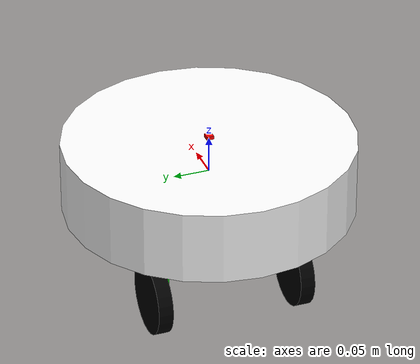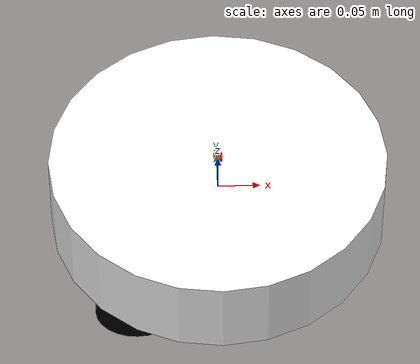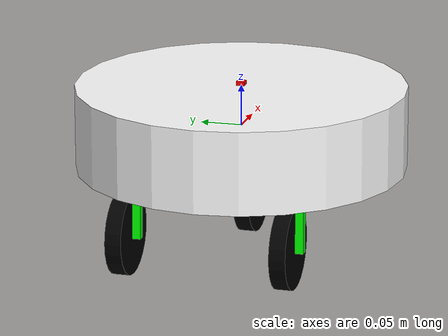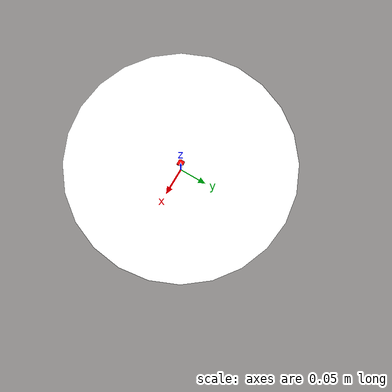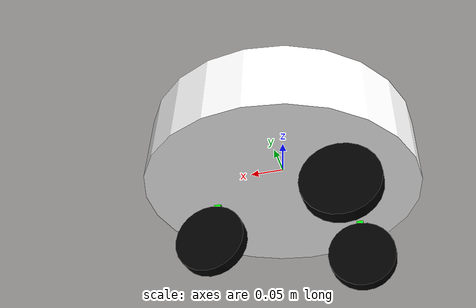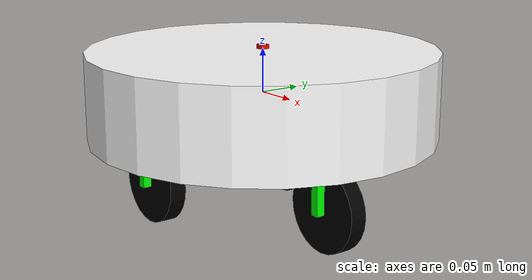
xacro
<?xml version="1.0"?>
<robot xmlns:xacro="http://www.ros.org/wiki/xacro" name="robone">

  <!-- Global constants -->
  <xacro:property name="pi" value="3.1415926535897931"/>

  <!-- Included files -->
  <xacro:include filename="$(find robone_description)/urdf/materials.xacro"/>
  <xacro:include filename="$(find robone_description)/urdf/common.xacro"/>
  <xacro:include filename="$(find robone_description)/urdf/wheel.xacro"/>

  <!-- Robot properties -->
  <xacro:property name="base_radius" value="0.2"/>
  <xacro:property name="base_height" value="0.1"/>

  <xacro:property name="sensor_length" value="0.01"/>

  <xacro:property name="wheel_width" value="0.02"/>
  <xacro:property name="wheel_radius" value="0.05"/>

  <link name="base_link">
    <visual>
      <xacro:cylinder_geometry radius="${base_radius}" height="${base_height}"/>
      <xacro:white_material/>
    </visual>
    <xacro:cylinder_collision radius="${base_radius+0.02}" height="${base_height*2}"/>
    <xacro:cylinder_inertia mass="5" radius="${base_radius}" height="${base_height}"/>
  </link>

  <joint name="hokuyo_joint" type="fixed">
    <axis xyz="0 1 0" />
    <origin xyz="0 0 ${base_height/2}" rpy="0 0 0"/>
    <parent link="base_link"/>
    <child link="hokuyo_link"/>
  </joint>

  <!-- Hokuyo Laser -->
  <link name="hokuyo_link">
    <origin xyz="0 0 ${sensor_length/2}" rpy="0 0 0"/>
    <visual>
      <xacro:box_geometry width="${sensor_length}" height="${sensor_length}" depth="${sensor_length}"/>
      <xacro:red_material/>
    </visual>
    <xacro:box_collision width="${sensor_length}" height="${sensor_length}" depth="${sensor_length}"/>
    <xacro:box_inertia mass="1e-5" width="${sensor_length}" height="${sensor_length}" depth="${sensor_length}"/>
  </link>

  <xacro:motor_wheel suffix="right" width="${wheel_width}" radius="${wheel_radius}"
       x_shift="${-base_radius/2}" y_shift="${-base_radius/2}" z_shift="${-base_height/2}"/>

  <xacro:motor_wheel suffix="left" width="${wheel_width}" radius="${wheel_radius}"
       x_shift="${-base_radius/2}" y_shift="${base_radius/2}" z_shift="${-base_height/2}"/>

  <xacro:simple_wheel suffix="forward" width="${wheel_width}" radius="${wheel_radius}"
       x_shift="${base_radius/2}" z_shift="${-base_height/2}"/>

</robot>

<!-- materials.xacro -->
<robot xmlns:xacro="http://www.ros.org/wiki/xacro">

   <xacro:macro name="white_material">
      <material name="white">
        <color rgba="255 255 255 1"/>
      </material>
   </xacro:macro>

   <xacro:macro name="black_material">
      <material name="black">
        <color rgba="0 0 0 1"/>
      </material>
   </xacro:macro>

   <xacro:macro name="red_material">
      <material name="red">
        <color rgba="255 0 0 1"/>
      </material>
   </xacro:macro>

   <xacro:macro name="green_material">
      <material name="green">
        <color rgba="0 255 0 1"/>
      </material>
   </xacro:macro>

</robot>

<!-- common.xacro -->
<robot xmlns:xacro="http://www.ros.org/wiki/xacro">

  <xacro:macro name="cylinder_inertia" params="mass radius height">

      <inertial>
         <mass value="${mass}" />
         <origin xyz="0 0 0" />

         <inertia  ixx="${(3*radius*radius + height*height)*mass/12}" ixy="0.0" ixz="0.0"
                   iyy="${(3*radius*radius + height*height)*mass/12}" iyz="0.0"
                   izz="${radius*radius*mass/2}" />
      </inertial>

  </xacro:macro>

  <xacro:macro name="cylinder_geometry" params="radius height">
    <geometry>
      <cylinder length="${height}" radius="${radius}"/>
    </geometry>
  </xacro:macro>

  <xacro:macro name="cylinder_collision" params="radius height">
    <collision>
      <xacro:cylinder_geometry radius="${radius}" height="${height}"/>
    </collision>
  </xacro:macro>

  <xacro:macro name="box_inertia" params="mass width height depth">

      <inertial>
         <mass value="${mass}" />
         <origin xyz="0 0 0" />

         <inertia  ixx="${(depth*depth + height*height)*mass/12}" ixy="0.0" ixz="0.0"
                   iyy="${(depth*depth + width*width)*mass/12}" iyz="0.0"
                   izz="${(width*width + height*height)*mass/12}" />
      </inertial>

  </xacro:macro>

  <xacro:macro name="box_geometry" params="width height depth">
    <geometry>
      <box size="${width} ${height} ${depth}"/>
    </geometry>
  </xacro:macro>

  <xacro:macro name="box_collision" params="width height depth">
    <collision>
      <xacro:box_geometry width="${width}" height="${height}" depth="${depth}"/>
    </collision>
  </xacro:macro>

</robot>

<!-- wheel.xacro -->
<robot xmlns:xacro="http://www.ros.org/wiki/xacro">

  <!-- Wheel helper properties -->
  <xacro:property name="wheel_holder_width" value="0.01"/>

  <xacro:macro name="wheel" params="suffix width radius x_shift y_shift z_shift">

    <link name="${suffix}_wheel_holder">
      <visual>
        <xacro:box_geometry width="${wheel_holder_width}" height="${wheel_holder_width}" depth="${radius + wheel_holder_width*2}"/>
        <xacro:green_material/>
      </visual>
      <xacro:box_collision width="${wheel_holder_width}" height="${wheel_holder_width}" depth="${radius + wheel_holder_width*2}"/>
      <xacro:box_inertia mass="0.03" width="${wheel_holder_width}" height="${wheel_holder_width}"
                         depth="${radius + wheel_holder_width*2}"/>
    </link>

    <joint name="base_to_${suffix}_wheel_holder" type="fixed">
      <parent link="base_link"/>
      <child link="${suffix}_wheel_holder"/>
      <origin xyz="${x_shift} ${y_shift} ${z_shift - radius/2 - wheel_holder_width}" rpy="0 0 0" />
      <axis xyz="0 0 1" />
    </joint>

    <link name="${suffix}_wheel">
      <visual>
        <xacro:cylinder_geometry radius="${radius}" height="${width}"/>
        <xacro:black_material/>
      </visual>
      <xacro:cylinder_collision radius="${radius}" height="${width}"/>
      <xacro:cylinder_inertia mass="0.03" radius="${radius}" height="${width}"/>
      <dynamics damping="0.01" friction="100.0" />
    </link>

    <joint name="wheel_holder_to_${suffix}_wheel" type="continuous">
      <parent link="${suffix}_wheel_holder"/>
      <child link="${suffix}_wheel"/>
      <origin xyz="0 ${wheel_holder_width/2 + width/2} ${-radius/2 - wheel_holder_width/2}" rpy="0 ${-pi/2} ${-pi/2}" />
      <axis xyz="0 0 1" />
      <limit effort="100" velocity="100" />
      <dynamics damping="0.01" friction="100.0" />
    </joint>

  </xacro:macro>

  <xacro:macro name="motor_wheel" params="suffix width radius x_shift y_shift z_shift">

    <xacro:wheel  suffix="${suffix}" width="${width}" radius="${radius}"
       x_shift="${x_shift}" y_shift="${y_shift}"  z_shift="${z_shift}"/>

    <transmission name="${suffix}_transmission">
       <type>transmission_interface/SimpleTransmission</type>
       <joint name="wheel_holder_to_${suffix}_wheel">
         <hardwareInterface>EffortJointInterface</hardwareInterface>
       </joint>
       <actuator name="${suffix}_motor">
         <hardwareInterface>EffortJointInterface</hardwareInterface>
         <mechanicalReduction>1</mechanicalReduction>
       </actuator>
    </transmission>

  </xacro:macro>

  <xacro:macro name="simple_wheel" params="suffix width radius x_shift z_shift">

    <xacro:wheel  suffix="${suffix}" width="${width}" radius="${radius}"
       x_shift="${x_shift}" y_shift="0"  z_shift="${z_shift}"/>

  </xacro:macro>

</robot>
